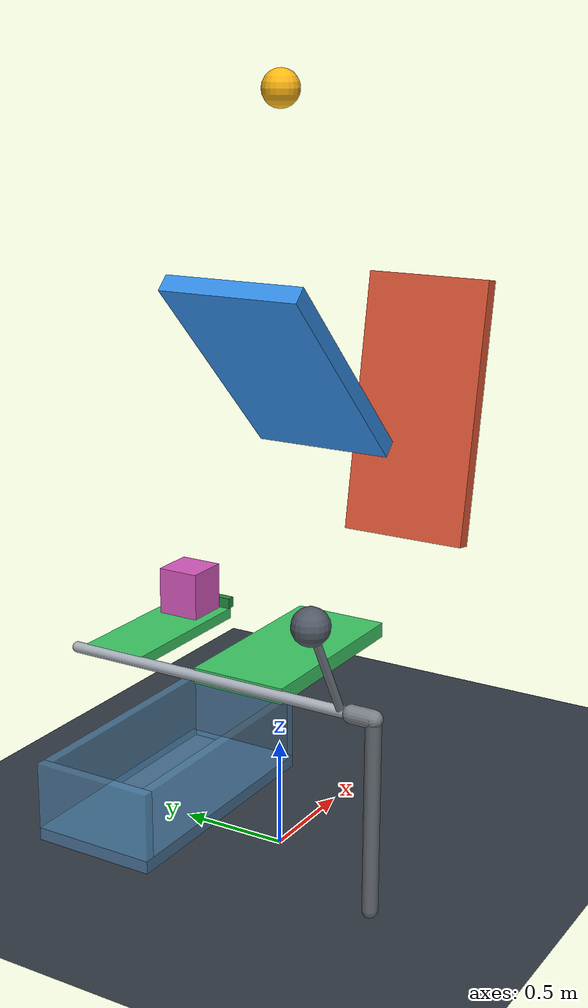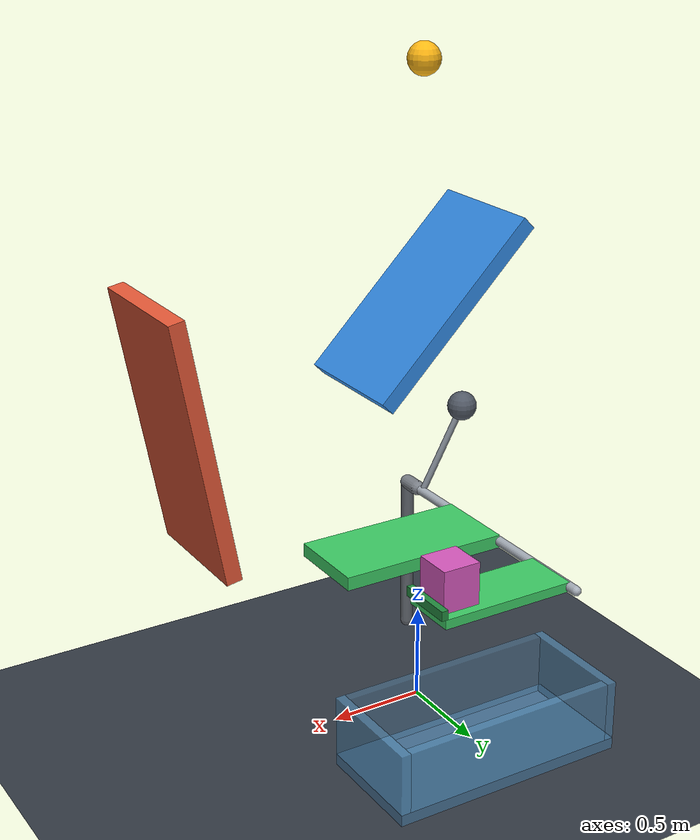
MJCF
<mujoco model="two_wall_ricochet_release">
  <compiler angle="radian" autolimits="true"/>
  <option timestep="0.002" gravity="0 0 -9.81" integrator="implicitfast" iterations="100" tolerance="1e-10"/>
  <size njmax="300" nconmax="100"/>
  <visual>
    <headlight ambient="0.35 0.35 0.35" diffuse="0.75 0.75 0.75" specular="0.2 0.2 0.2"/>
    <map znear="0.01" zfar="30"/>
  </visual>

  <worldbody>
    <light name="overhead_light" pos="0 -3 6" dir="0 0.4 -1" directional="true"/>
    <camera name="overview" pos="4 -7 4" xyaxes="0.868 0.496 0 -0.215 0.376 0.901"/>

    <geom name="floor" type="plane" pos="0 0 0" size="6 6 0.1" friction="1.0 0.02 0.03" condim="6" solref="0.008 1" solimp="0.95 0.99 0.001" rgba="0.20 0.23 0.27 1"/>

    <!-- At x=0, the ball's bottom starts 1 m above wall1's upper face. -->
    <body name="ball" pos="0 0 3.336568542">
      <freejoint name="ball_free"/>
      <geom name="ball_sphere" type="sphere" size="0.08" mass="0.35" friction="0.8 0.01 0.03" condim="6" solref="0.008 1" solimp="0.95 0.99 0.001" rgba="1 0.72 0.08 1"/>
    </body>

    <body name="wall1" pos="0 0 2.2" quat="0.923879533 0 0.382683432 0">
      <geom name="wall1_surface" type="box" size="0.55 0.32 0.04" friction="0 0 0" condim="1" rgba="0.20 0.55 0.90 1"/>
    </body>

    <body name="wall2" pos="1.3182 0 1.775" quat="0.766044443 0 -0.642787610 0">
      <geom name="wall2_surface" type="box" size="0.65 0.32 0.04" friction="0 0 0" condim="1" rgba="0.90 0.35 0.22 1"/>
    </body>

    <body name="hinge_mount" pos="-0.35 -0.65 0">
      <geom name="hinge_mount_post" type="capsule" fromto="0 0 0.035 0 0 0.90" size="0.035" rgba="0.38 0.40 0.43 1"/>
      <geom name="hinge_mount_bearing" type="capsule" fromto="0 0 0.90 0 0.10 0.90" size="0.04" rgba="0.48 0.50 0.53 1"/>
    </body>

    <!-- Negative hinge rotation lowers the paddle. The raised counterweight
         biases the initial upper stop, then passes over center after impact. -->
    <body name="target" pos="-0.35 0 0.90">
      <joint name="target_hinge" type="hinge" axis="0 -1 0" range="-1.1 0" damping="0.025" frictionloss="0.005" solreflimit="0.004 1" solimplimit="0.999 0.999 0.001"/>
      <geom name="target_axle" type="capsule" fromto="0 -0.60 0 0 0.85 0" size="0.025" mass="0.035" friction="0.3 0.005 0.001" rgba="0.65 0.68 0.72 1"/>
      <geom name="target_strike_paddle" type="box" pos="0.45 0 0" size="0.45 0.22 0.035" mass="0.12" friction="0.6 0.005 0.001" solref="0.006 1" solimp="0.95 0.99 0.001" rgba="0.24 0.80 0.40 1"/>
      <geom name="target_release_shelf" type="box" pos="0.36 0.65 0" size="0.36 0.15 0.025" mass="0.045" friction="0.25 0.005 0.001" solref="0.006 1" solimp="0.95 0.99 0.001" rgba="0.24 0.80 0.40 1"/>
      <geom name="target_release_lip" type="box" pos="0.725 0.65 0.05" size="0.018 0.15 0.025" mass="0.01" friction="0.25 0.005 0.001" solref="0.006 1" solimp="0.95 0.99 0.001" rgba="0.14 0.55 0.25 1"/>
      <geom name="target_counterweight_arm" type="capsule" fromto="0 -0.50 0 -0.25 -0.50 0.45" size="0.018" mass="0.025" rgba="0.48 0.51 0.55 1"/>
      <geom name="target_counterweight" type="sphere" pos="-0.25 -0.50 0.45" size="0.08" mass="0.70" rgba="0.32 0.35 0.40 1"/>
    </body>

    <!-- The small retaining lip delays tipping until near the lower stop. -->
    <body name="block" pos="0.25 0.65 1.035">
      <freejoint name="block_free"/>
      <geom name="block_payload" type="box" size="0.10 0.10 0.11" mass="0.12" friction="0.25 0.005 0.001" condim="6" solref="0.008 1" solimp="0.95 0.99 0.001" rgba="0.85 0.35 0.75 1"/>
    </body>

    <body name="bin" pos="0 0 0">
      <geom name="bin_bottom" type="box" pos="0.075 0.65 0.03" size="0.625 0.30 0.03" friction="1 0.02 0.02" condim="6" solref="0.008 1" solimp="0.95 0.99 0.001" rgba="0.28 0.44 0.58 1"/>
      <geom name="bin_left" type="box" pos="-0.525 0.65 0.22" size="0.025 0.30 0.16" friction="1 0.02 0.02" condim="6" solref="0.008 1" rgba="0.35 0.58 0.75 0.65"/>
      <geom name="bin_right" type="box" pos="0.675 0.65 0.22" size="0.025 0.30 0.16" friction="1 0.02 0.02" condim="6" solref="0.008 1" rgba="0.35 0.58 0.75 0.65"/>
      <geom name="bin_front" type="box" pos="0.075 0.375 0.22" size="0.575 0.025 0.16" friction="1 0.02 0.02" condim="6" solref="0.008 1" rgba="0.35 0.58 0.75 0.40"/>
      <geom name="bin_back" type="box" pos="0.075 0.925 0.22" size="0.575 0.025 0.16" friction="1 0.02 0.02" condim="6" solref="0.008 1" rgba="0.35 0.58 0.75 0.65"/>
    </body>
  </worldbody>

  <contact>
    <exclude body1="target" body2="hinge_mount"/>
    <pair name="first_ricochet" geom1="ball_sphere" geom2="wall1_surface" condim="1" friction="0 0 0 0 0" solref="-20000 -20" solimp="0.99 0.99 0.001"/>
    <pair name="second_ricochet" geom1="ball_sphere" geom2="wall2_surface" condim="1" friction="0 0 0 0 0" solref="-20000 -20" solimp="0.99 0.99 0.001"/>
  </contact>

  <keyframe>
    <key name="start" qpos="0 0 3.336568542 1 0 0 0 0 0.25 0.65 1.035 1 0 0 0" qvel="0 0 0 0 0 0 0 0 0 0 0 0 0"/>
  </keyframe>
</mujoco>
